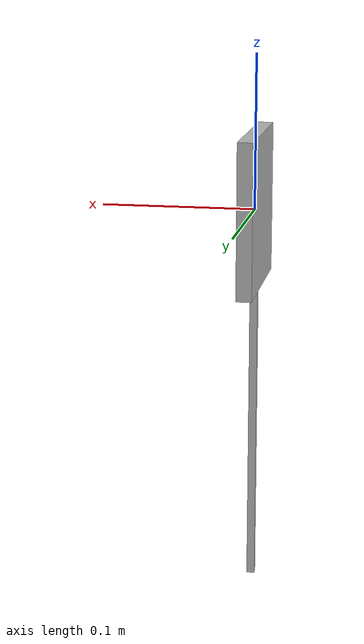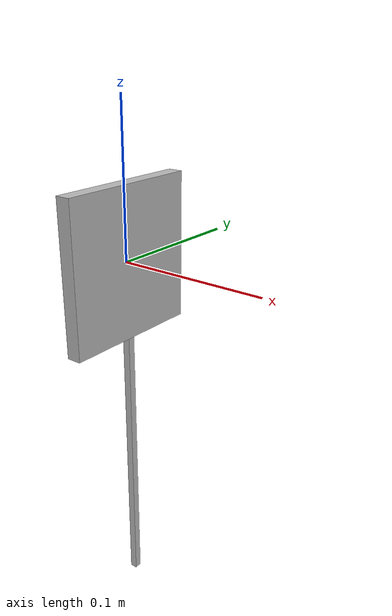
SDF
<?xml version='1.0'?>

<sdf version='1.5'>
   <model name="roundabout">
      <static>true</static>
      <link name="link">
         <collision name='collision'>
            <geometry>
            <box>
               <size>0.01 0.1 0.1</size>
            </box>
            </geometry>
         </collision>
         <visual name='visual'>
            <cast_shadows>false</cast_shadows>
            <geometry>
            <box>
               <size>0.01 0.1 0.1</size>
            </box>
            </geometry>
            <material>
               <script>
                  <uri>model://crosswalk/materials/scripts</uri>
                  <uri>model://crosswalk/materials/textures/</uri>
                  <name>roundabout/Image</name>
               </script>
            </material>
         </visual>
         <collision name='pole_collision'>
            <pose>0 0 -0.125 0 0 0</pose>
            <geometry>
            <box>
               <size>0.005 0.005 0.25</size>
            </box>
            </geometry>
         </collision>
         <visual name='pole_visual'>
            <pose>0 0 -0.125 0 0 0</pose>
            <cast_shadows>false</cast_shadows>
            <geometry>
            <box>
               <size>0.005 0.005 0.25</size>
            </box>
            </geometry>
         </visual>
      </link>
   </model>
</sdf>
